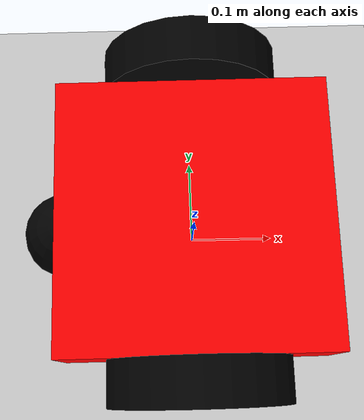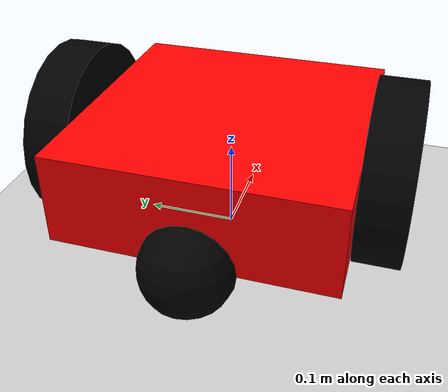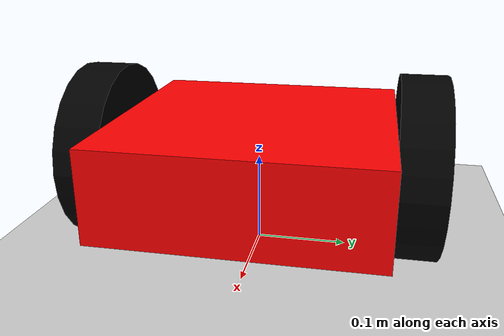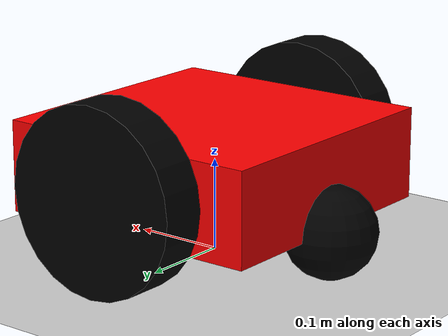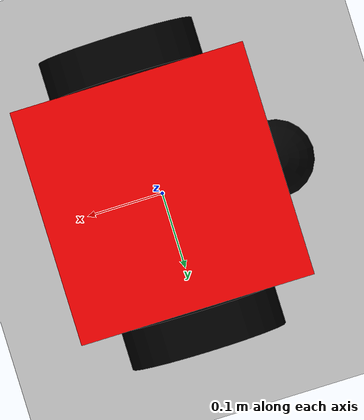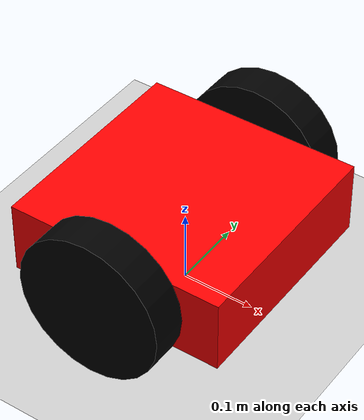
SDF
<?xml version="1.0"?>
<sdf version="1.8">
  <world name="car_world">
    <physics type="ode">
      <max_step_size>0.001</max_step_size>
      <real_time_factor>1.0</real_time_factor>
    </physics>

    <plugin
      filename="libignition-gazebo-physics-system.so"
      name="ignition::gazebo::systems::Physics">
    </plugin>
    <plugin
      filename="libignition-gazebo-user-commands-system.so"
      name="ignition::gazebo::systems::UserCommands">
    </plugin>
    <plugin
      filename="libignition-gazebo-scene-broadcaster-system.so"
      name="ignition::gazebo::systems::SceneBroadcaster">
    </plugin>

    <light type="directional" name="sun">
      <cast_shadows>true</cast_shadows>
      <pose>0 0 10 0 0 0</pose>
      <diffuse>0.8 0.8 0.8 1</diffuse>
      <specular>0.2 0.2 0.2 1</specular>
      <attenuation>
        <range>1000</range>
        <constant>0.9</constant>
        <linear>0.01</linear>
        <quadratic>0.001</quadratic>
      </attenuation>
      <direction>-0.5 0.1 -0.9</direction>
    </light>

    <model name="ground_plane">
      <static>true</static>
      <link name="link">
        <collision name="collision">
          <geometry>
            <plane>
              <normal>0 0 1</normal>
            </plane>
          </geometry>
        </collision>
        <visual name="visual">
          <geometry>
            <plane>
              <normal>0 0 1</normal>
              <size>100 100</size>
            </plane>
          </geometry>
          <material>
            <ambient>0.8 0.8 0.8 1</ambient>
            <diffuse>0.8 0.8 0.8 1</diffuse>
            <specular>0.8 0.8 0.8 1</specular>
          </material>
        </visual>
      </link>
    </model>

    <!-- Very simple differential drive robot -->
    <model name="simple_robot">
      <pose>0 0 0.1 0 0 0</pose>

      <!-- Main body -->
      <link name="body">
        <inertial>
          <mass>1.0</mass>
          <inertia>
            <ixx>0.1</ixx>
            <ixy>0</ixy>
            <ixz>0</ixz>
            <iyy>0.1</iyy>
            <iyz>0</iyz>
            <izz>0.1</izz>
          </inertia>
        </inertial>
        <collision name="collision">
          <geometry>
            <box>
              <size>0.3 0.3 0.1</size>
            </box>
          </geometry>
        </collision>
        <visual name="visual">
          <geometry>
            <box>
              <size>0.3 0.3 0.1</size>
            </box>
          </geometry>
          <material>
            <ambient>1 0 0 1</ambient>
            <diffuse>1 0 0 1</diffuse>
            <specular>1 0 0 1</specular>
          </material>
        </visual>
      </link>

      <!-- Left wheel -->
      <link name="left_wheel">
        <pose>0 0.175 0 1.5707 0 0</pose>
        <inertial>
          <mass>0.5</mass>
          <inertia>
            <ixx>0.001</ixx>
            <ixy>0</ixy>
            <ixz>0</ixz>
            <iyy>0.001</iyy>
            <iyz>0</iyz>
            <izz>0.001</izz>
          </inertia>
        </inertial>
        <collision name="collision">
          <geometry>
            <cylinder>
              <radius>0.1</radius>
              <length>0.05</length>
            </cylinder>
          </geometry>
        </collision>
        <visual name="visual">
          <geometry>
            <cylinder>
              <radius>0.1</radius>
              <length>0.05</length>
            </cylinder>
          </geometry>
          <material>
            <ambient>0 0 0 1</ambient>
            <diffuse>0 0 0 1</diffuse>
            <specular>0 0 0 1</specular>
          </material>
        </visual>
      </link>

      <!-- Right wheel -->
      <link name="right_wheel">
        <pose>0 -0.175 0 1.5707 0 0</pose>
        <inertial>
          <mass>0.5</mass>
          <inertia>
            <ixx>0.001</ixx>
            <ixy>0</ixy>
            <ixz>0</ixz>
            <iyy>0.001</iyy>
            <iyz>0</iyz>
            <izz>0.001</izz>
          </inertia>
        </inertial>
        <collision name="collision">
          <geometry>
            <cylinder>
              <radius>0.1</radius>
              <length>0.05</length>
            </cylinder>
          </geometry>
        </collision>
        <visual name="visual">
          <geometry>
            <cylinder>
              <radius>0.1</radius>
              <length>0.05</length>
            </cylinder>
          </geometry>
          <material>
            <ambient>0 0 0 1</ambient>
            <diffuse>0 0 0 1</diffuse>
            <specular>0 0 0 1</specular>
          </material>
        </visual>
      </link>

      <!-- Caster wheel for balance -->
      <link name="caster">
        <pose>-0.15 0 -0.05 0 0 0</pose>
        <inertial>
          <mass>0.1</mass>
          <inertia>
            <ixx>0.0001</ixx>
            <ixy>0</ixy>
            <ixz>0</ixz>
            <iyy>0.0001</iyy>
            <iyz>0</iyz>
            <izz>0.0001</izz>
          </inertia>
        </inertial>
        <collision name="collision">
          <geometry>
            <sphere>
              <radius>0.05</radius>
            </sphere>
          </geometry>
          <surface>
            <friction>
              <ode>
                <mu>0</mu>
                <mu2>0</mu2>
                <slip1>1.0</slip1>
                <slip2>1.0</slip2>
              </ode>
            </friction>
          </surface>
        </collision>
        <visual name="visual">
          <geometry>
            <sphere>
              <radius>0.05</radius>
            </sphere>
          </geometry>
          <material>
            <ambient>0 0 0 1</ambient>
            <diffuse>0 0 0 1</diffuse>
            <specular>0 0 0 1</specular>
          </material>
        </visual>
      </link>

      <!-- Joints -->
      <joint name="left_wheel_joint" type="revolute">
        <parent>body</parent>
        <child>left_wheel</child>
        <axis>
          <xyz>0 0 1</xyz>
        </axis>
      </joint>

      <joint name="right_wheel_joint" type="revolute">
        <parent>body</parent>
        <child>right_wheel</child>
        <axis>
          <xyz>0 0 1</xyz>
        </axis>
      </joint>

      <joint name="caster_joint" type="ball">
        <parent>body</parent>
        <child>caster</child>
      </joint>

      <!-- Diff drive plugin -->
      <plugin
        filename="libignition-gazebo6-diff-drive-system.so"
        name="ignition::gazebo::systems::DiffDrive">
        <left_joint>left_wheel_joint</left_joint>
        <right_joint>right_wheel_joint</right_joint>
        <wheel_separation>0.35</wheel_separation>
        <wheel_radius>0.1</wheel_radius>
        <odom_publish_frequency>10</odom_publish_frequency>
        <topic>cmd_vel</topic>
      </plugin>
    </model>
  </world>
</sdf>
